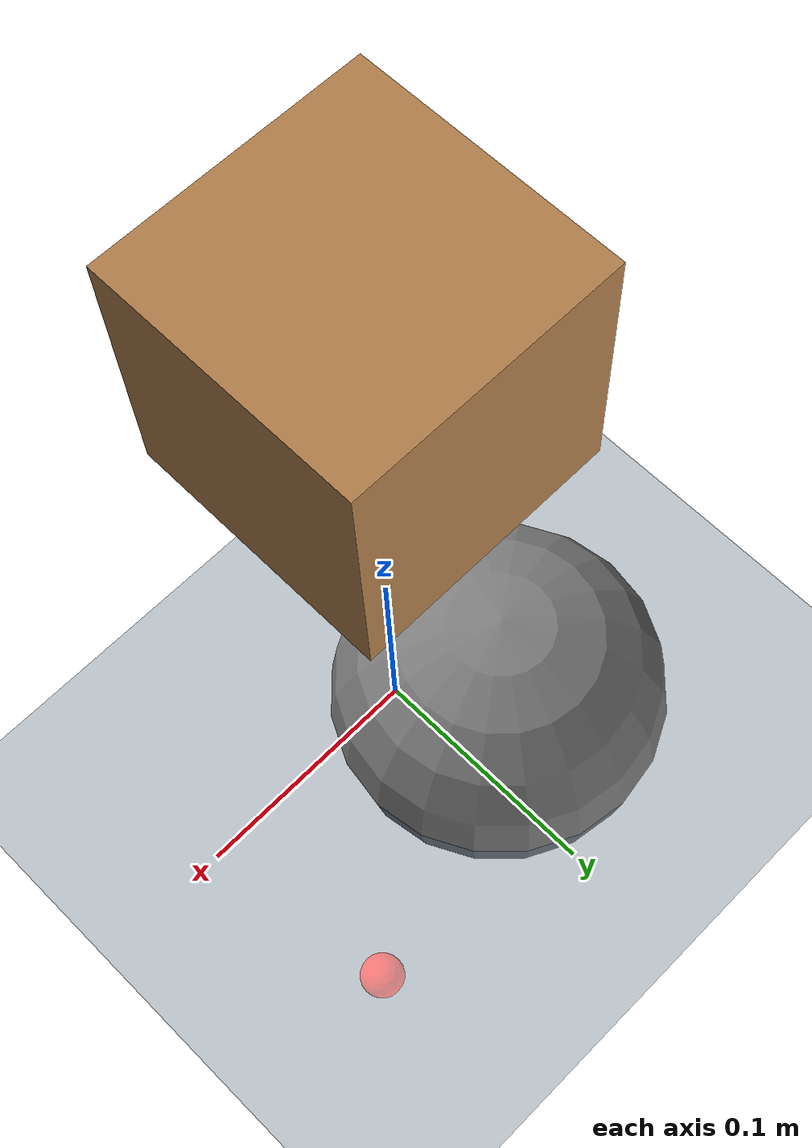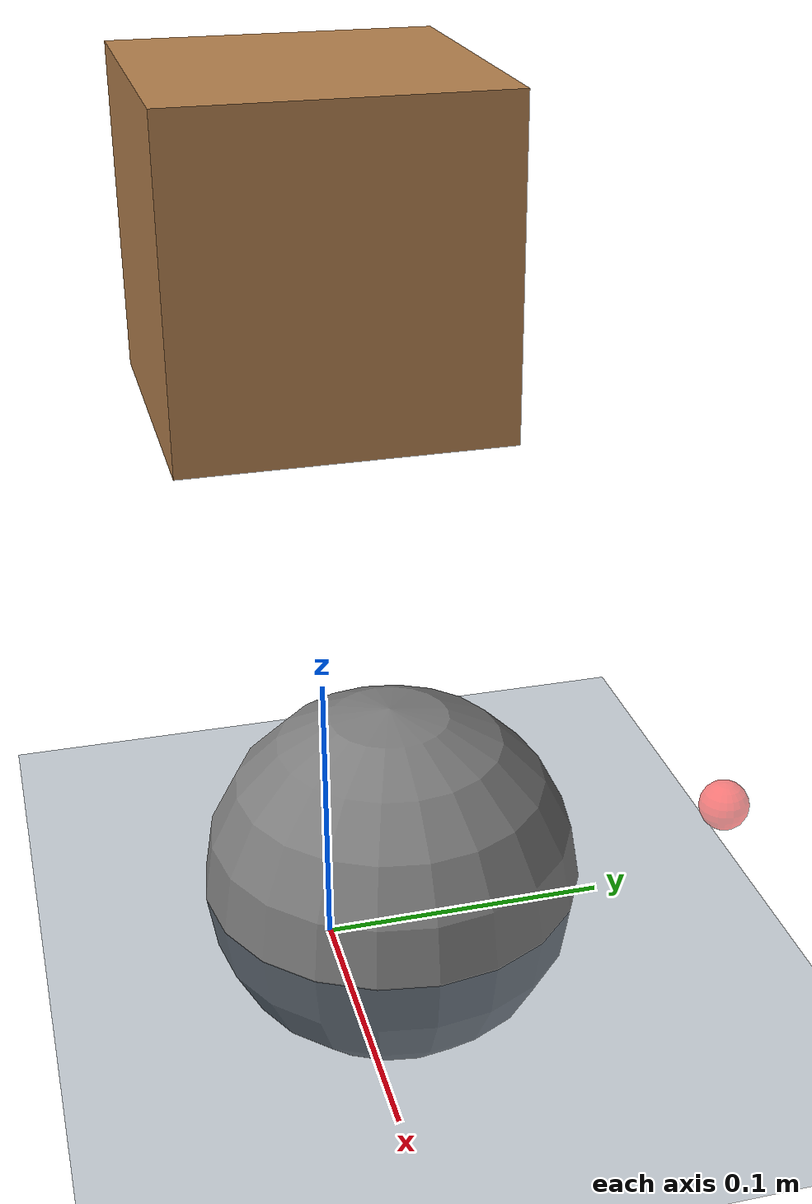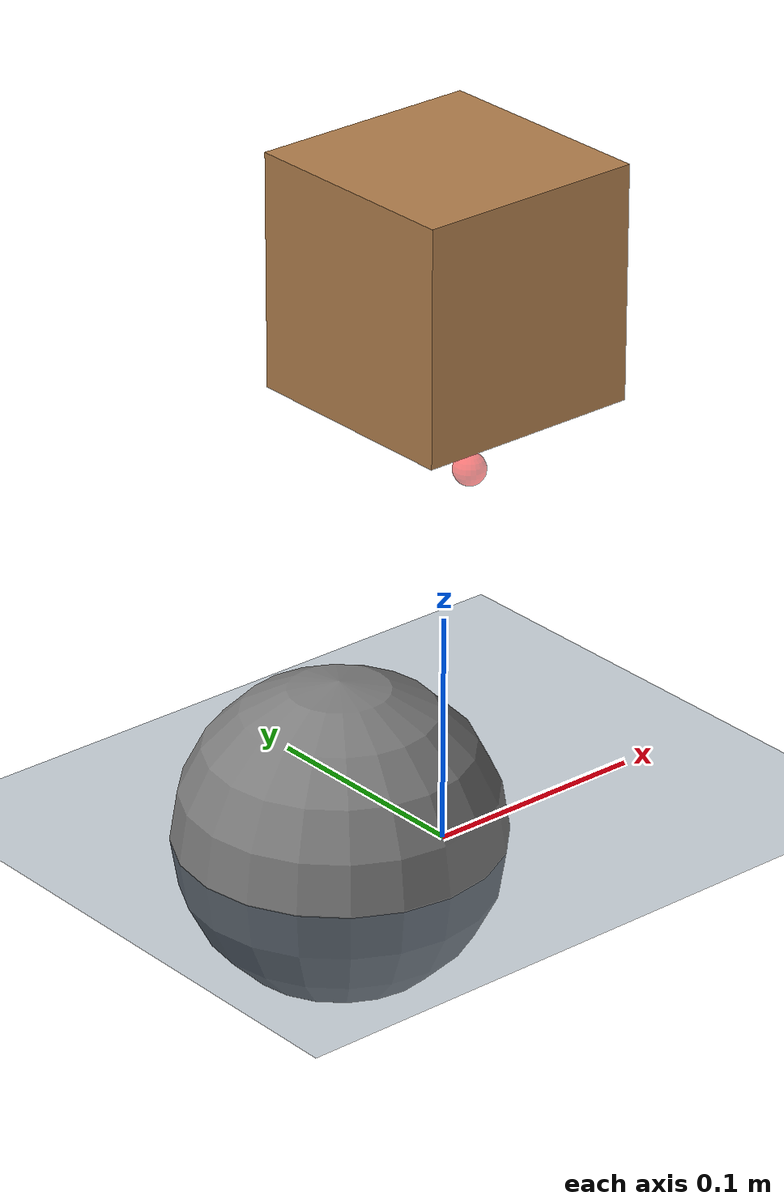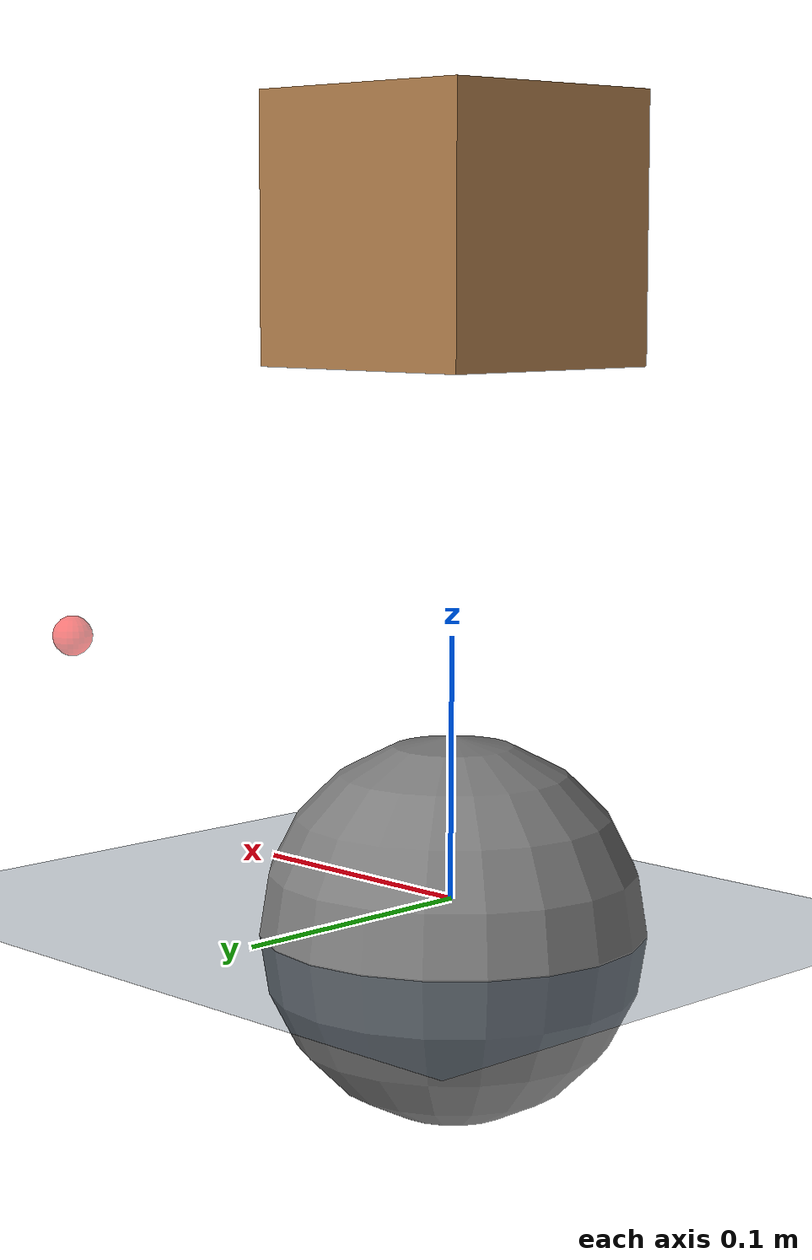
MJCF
<mujoco>
  <custom>
    <numeric name="estimator_configuration_length" data="32" />
  </custom>

  <option timestep="0.005"/>
  <default>
    <geom solimp="0 0.95 0.001"/>
  </default>

  <visual>
    <headlight ambient=".4 .4 .4" diffuse=".8 .8 .8" specular="0.1 0.1 0.1"/>
    <map znear=".01"/>
    <quality shadowsize="2048"/>
    <global offheight="1024" offwidth="1024"/>
  </visual>

  <asset>
    <texture name="skybox" type="skybox" builtin="gradient" rgb1="0 0 0" rgb2="0 0 0"
             width="800" height="800" mark="random" markrgb="0 0 0"/>
  </asset>

  <asset>
      <texture name="grid" type="2d" builtin="checker" rgb1=".1 .2 .3" rgb2=".2 .3 .4" width="300" height="300" mark="edge" markrgb=".2 .3 .4"/>
      <material name="grid" texture="grid" texrepeat="1 1" texuniform="true" reflectance=".2"/>
      <material name="self" rgba=".7 .5 .3 1"/>
      <material name="self_default" rgba=".7 .5 .3 1"/>
      <material name="self_highlight" rgba="0 .5 .3 1"/>
      <material name="effector" rgba=".7 .4 .2 1"/>
      <material name="effector_default" rgba=".7 .4 .2 1"/>
      <material name="effector_highlight" rgba="0 .5 .3 1"/>
      <material name="decoration" rgba=".3 .5 .7 1"/>
      <material name="eye" rgba="0 .2 1 1"/>
      <material name="target" rgba="0 1 0 0.5"/>
      <material name="target_default" rgba=".6 .3 .3 1"/>
      <material name="target_highlight" rgba=".6 .3 .3 .4"/>
      <material name="site" rgba=".5 .5 .5 .3"/>
  </asset>

  <worldbody>
    <light diffuse=".5 .5 .5" pos="0 0 3" dir="0 0 -1"/>
    <camera pos="-0.079 -0.587 0.400" xyaxes="0.951 -0.310 0.000 0.133 0.410 0.902"/>
    <geom name="ground" type="plane" pos="0 0 0" size=".3 .3 .1" material="grid"/>
    <geom size=".07" pos="-.03 0.03 0"/>
    <body name="m1" mocap="true" pos="0.1 0.1 0.1">
      <geom type="sphere" size="0.0075" contype="0" conaffinity="0" rgba="1 0 0 0.5"/>
    </body>
    <body name="m2" mocap="true" pos="0.1 0.1 0.1">
      <geom type="sphere" size="0.0075" contype="0" conaffinity="0" rgba="1 0 0 0.5"/>
    </body>
    <body name="m3" mocap="true" pos="0.1 0.1 0.1">
      <geom type="sphere" size="0.0075" contype="0" conaffinity="0" rgba="1 0 0 0.5"/>
    </body>
    <body name="m4" mocap="true" pos="0.1 0.1 0.1">
      <geom type="sphere" size="0.0075" contype="0" conaffinity="0" rgba="1 0 0 0.5"/>
    </body>
    <body name="m5" mocap="true" pos="0.1 0.1 0.1">
      <geom type="sphere" size="0.0075" contype="0" conaffinity="0" rgba="1 0 0 0.5"/>
    </body>
    <body name="m6" mocap="true" pos="0.1 0.1 0.1">
      <geom type="sphere" size="0.0075" contype="0" conaffinity="0" rgba="1 0 0 0.5"/>
    </body>
    <body name="m7" mocap="true" pos="0.1 0.1 0.1">
      <geom type="sphere" size="0.0075" contype="0" conaffinity="0" rgba="1 0 0 0.5"/>
    </body>
    <body name="m8" mocap="true" pos="0.1 0.1 0.1">
      <geom type="sphere" size="0.0075" contype="0" conaffinity="0" rgba="1 0 0 0.5"/>
    </body>
    <body name="root" pos="0 0 0.25">
      <joint type="free"/>
      <geom type="box" size=".05 .05 .05" material="self" mass="1.0"/>
      <site name="corner1" type="sphere" size="0.05" rgba="1 0 0 0" pos=".05 .05 .05"/>
      <site name="corner2" type="sphere" size="0.05" rgba="1 0 0 0" pos="-.05 .05 .05"/>
      <site name="corner3" type="sphere" size="0.05" rgba="1 0 0 0" pos=".05 -.05 .05"/>
      <site name="corner4" type="sphere" size="0.05" rgba="1 0 0 0" pos=".05 .05 -.05"/>
      <site name="corner5" type="sphere" size="0.05" rgba="1 0 0 0" pos="-.05 -.05 .05"/>
      <site name="corner6" type="sphere" size="0.05" rgba="1 0 0 0" pos=".05 -.05 -.05"/>
      <site name="corner7" type="sphere" size="0.05" rgba="1 0 0 0" pos="-.05 .05 -.05"/>
      <site name="corner8" type="sphere" size="0.05" rgba="1 0 0 0" pos="-.05 -.05 -.05"/>
    </body>
  </worldbody>

  <sensor>
    <!-- corner positions -->
    <framepos name="corner_position1" objtype="site" objname="corner1"/>
    <framepos name="corner_position2" objtype="site" objname="corner2"/>
    <framepos name="corner_position3" objtype="site" objname="corner3"/>
    <framepos name="corner_position4" objtype="site" objname="corner4"/>
    <framepos name="corner_position5" objtype="site" objname="corner5"/>
    <framepos name="corner_position6" objtype="site" objname="corner6"/>
    <framepos name="corner_position7" objtype="site" objname="corner7"/>
    <framepos name="corner_position8" objtype="site" objname="corner8"/>
    <!-- corner velocities -->
    <framelinvel name="corner_velocity1" objtype="site" objname="corner1"/>
    <framelinvel name="corner_velocity2" objtype="site" objname="corner2"/>
    <framelinvel name="corner_velocity3" objtype="site" objname="corner3"/>
    <framelinvel name="corner_velocity4" objtype="site" objname="corner4"/>
    <framelinvel name="corner_velocity5" objtype="site" objname="corner5"/>
    <framelinvel name="corner_velocity6" objtype="site" objname="corner6"/>
    <framelinvel name="corner_velocity7" objtype="site" objname="corner7"/>
    <framelinvel name="corner_velocity8" objtype="site" objname="corner8"/>
  </sensor>
</mujoco>
